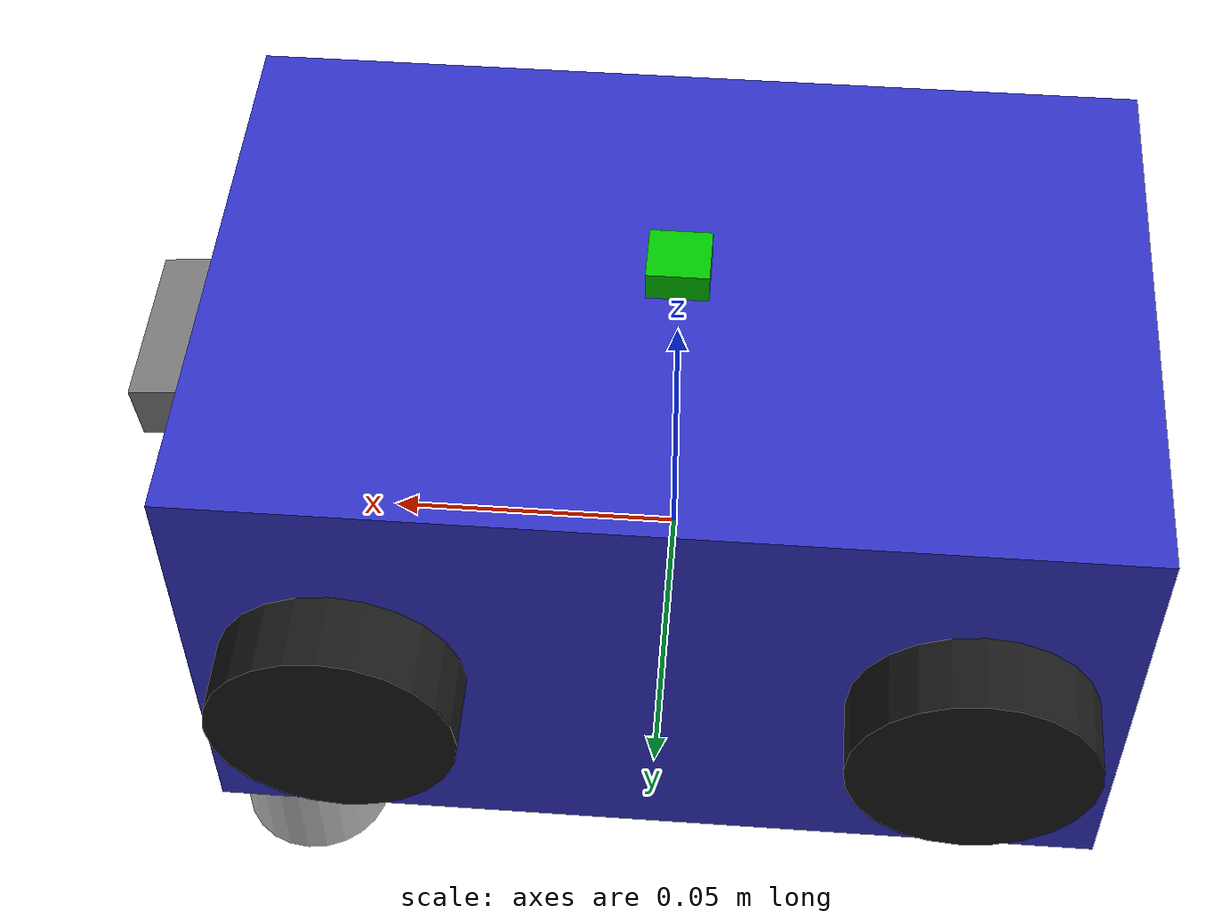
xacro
<?xml version="1.0"?>
<robot name="aspect_rover" xmlns:xacro="http://www.ros.org/wiki/xacro">

  <!-- Chassis dimensions (metres) -->
  <xacro:property name="chassis_length" value="0.15"/>
  <xacro:property name="chassis_width"  value="0.10"/>
  <xacro:property name="chassis_height" value="0.08"/>
  <xacro:property name="chassis_mass"   value="0.2"/>

  <!-- Wheel dimensions -->
  <xacro:property name="wheel_radius" value="0.02"/>
  <xacro:property name="wheel_width"  value="0.015"/>
  <xacro:property name="wheel_mass"   value="0.025"/>
  <xacro:property name="wheelbase_x"  value="0.05"/>
  <xacro:property name="wheelbase_y"  value="0.055"/>

  <!-- Auger dimensions (Phase 1 box-geometry stub) -->
  <!--   auger_radius  = drill radius (m)                               -->
  <!--   auger_length  = body/housing length (m)                        -->
  <!--   auger_feed_travel = max prismatic travel downward (m)          -->
  <!--   nominal rotation ~120 RPM = 12.57 rad/s                        -->
  <!--   nominal feed velocity 10 mm/s = 0.01 m/s                      -->
  <xacro:property name="auger_radius"      value="0.015"/>
  <xacro:property name="auger_length"      value="0.08"/>
  <xacro:property name="auger_feed_travel" value="0.05"/>
  <xacro:property name="auger_mass"        value="0.060"/>

  <!-- ======================== Base links ======================== -->

  <link name="base_footprint"/>

  <joint name="base_joint" type="fixed">
    <parent link="base_footprint"/>
    <child  link="base_link"/>
    <origin xyz="0 0 ${wheel_radius}" rpy="0 0 0"/>
  </joint>

  <link name="base_link">
    <visual>
      <geometry>
        <box size="${chassis_length} ${chassis_width} ${chassis_height}"/>
      </geometry>
      <material name="blue">
        <color rgba="0.2 0.2 0.8 1.0"/>
      </material>
    </visual>
    <collision>
      <geometry>
        <box size="${chassis_length} ${chassis_width} ${chassis_height}"/>
      </geometry>
    </collision>
    <inertial>
      <mass value="${chassis_mass}"/>
      <!-- Box inertia: ixx=m(y²+z²)/12, iyy=m(x²+z²)/12, izz=m(x²+y²)/12 -->
      <inertia ixx="0.000273" ixy="0.0" ixz="0.0"
               iyy="0.000482" iyz="0.0"
               izz="0.000542"/>
    </inertial>
  </link>

  <!-- ======================== Wheel macro ======================== -->

  <xacro:macro name="wheel" params="prefix reflect_lr reflect_fb">
    <link name="${prefix}_wheel_link">
      <visual>
        <origin xyz="0 0 0" rpy="1.5708 0 0"/>
        <geometry>
          <cylinder radius="${wheel_radius}" length="${wheel_width}"/>
        </geometry>
        <material name="black">
          <color rgba="0.1 0.1 0.1 1.0"/>
        </material>
      </visual>
      <collision>
        <origin xyz="0 0 0" rpy="1.5708 0 0"/>
        <geometry>
          <cylinder radius="${wheel_radius}" length="${wheel_width}"/>
        </geometry>
      </collision>
      <inertial>
        <mass value="${wheel_mass}"/>
        <!-- Cylinder inertia: ixx=iyy=m(3r²+h²)/12, izz=mr²/2 -->
        <inertia ixx="0.0000030" ixy="0.0" ixz="0.0"
                 iyy="0.0000030" iyz="0.0"
                 izz="0.0000050"/>
      </inertial>
    </link>

    <joint name="${prefix}_wheel_joint" type="continuous">
      <parent link="base_link"/>
      <child  link="${prefix}_wheel_link"/>
      <origin xyz="${reflect_fb * wheelbase_x} ${reflect_lr * wheelbase_y} 0"
              rpy="0 0 0"/>
      <axis xyz="0 1 0"/>
    </joint>
  </xacro:macro>

  <!-- Instantiate 4 wheels -->
  <xacro:wheel prefix="front_left"  reflect_lr=" 1" reflect_fb=" 1"/>
  <xacro:wheel prefix="front_right" reflect_lr="-1" reflect_fb=" 1"/>
  <xacro:wheel prefix="rear_left"   reflect_lr=" 1" reflect_fb="-1"/>
  <xacro:wheel prefix="rear_right"  reflect_lr="-1" reflect_fb="-1"/>

  <!-- ======================== IMU ======================== -->

  <link name="imu_link">
    <visual>
      <geometry>
        <box size="0.01 0.01 0.005"/>
      </geometry>
      <material name="green">
        <color rgba="0.0 0.8 0.0 1.0"/>
      </material>
    </visual>
    <inertial>
      <mass value="0.005"/>
      <inertia ixx="0.000001" ixy="0.0" ixz="0.0"
               iyy="0.000001" iyz="0.0"
               izz="0.000001"/>
    </inertial>
  </link>

  <joint name="imu_joint" type="fixed">
    <parent link="base_link"/>
    <child  link="imu_link"/>
    <origin xyz="0 0 ${chassis_height / 2 + 0.005}" rpy="0 0 0"/>
  </joint>

  <!-- ======================== Camera ======================== -->

  <link name="camera_link">
    <visual>
      <geometry>
        <box size="0.015 0.03 0.01"/>
      </geometry>
      <material name="grey">
        <color rgba="0.5 0.5 0.5 1.0"/>
      </material>
    </visual>
    <inertial>
      <mass value="0.010"/>
      <inertia ixx="0.000001" ixy="0.0" ixz="0.0"
               iyy="0.000001" iyz="0.0"
               izz="0.000001"/>
    </inertial>
  </link>

  <joint name="camera_joint" type="fixed">
    <parent link="base_link"/>
    <child  link="camera_link"/>
    <origin xyz="${chassis_length / 2 + 0.005} 0 0.02" rpy="0 0.1 0"/>
  </joint>

  <link name="camera_optical_link"/>

  <joint name="camera_optical_joint" type="fixed">
    <parent link="camera_link"/>
    <child  link="camera_optical_link"/>
    <origin xyz="0 0 0" rpy="-1.5708 0 -1.5708"/>
  </joint>

  <!-- ======================== Excavation Auger ======================== -->

  <!-- Mount bracket — fixed to front-bottom of chassis -->
  <link name="auger_mount_link">
    <visual>
      <geometry>
        <box size="0.01 0.01 0.005"/>
      </geometry>
      <material name="dark_grey">
        <color rgba="0.3 0.3 0.3 1.0"/>
      </material>
    </visual>
    <inertial>
      <mass value="0.005"/>
      <inertia ixx="0.000001" ixy="0.0" ixz="0.0"
               iyy="0.000001" iyz="0.0"
               izz="0.000001"/>
    </inertial>
  </link>

  <joint name="auger_mount_joint" type="fixed">
    <parent link="base_link"/>
    <child  link="auger_mount_link"/>
    <!-- Front-centre, flush with chassis bottom -->
    <origin xyz="${chassis_length / 2} 0 ${-(chassis_height / 2)}" rpy="0 0 0"/>
  </joint>

  <!-- Auger housing — translates vertically (vertical feed axis) -->
  <link name="auger_housing_link">
    <visual>
      <origin xyz="0 0 ${-(auger_length / 2)}" rpy="0 0 0"/>
      <geometry>
        <cylinder radius="${auger_radius}" length="${auger_length}"/>
      </geometry>
      <material name="silver">
        <color rgba="0.75 0.75 0.75 1.0"/>
      </material>
    </visual>
    <!-- No collision: auger spawns below ground plane (mount is flush with chassis
         bottom at -0.02m world-z); terrain contact added with real mesh in T-301. -->
    <inertial>
      <origin xyz="0 0 ${-(auger_length / 2)}" rpy="0 0 0"/>
      <mass value="${auger_mass * 0.6}"/>
      <!-- Cylinder: ixx=iyy=m(3r²+l²)/12, izz=mr²/2 -->
      <inertia ixx="0.0000212" ixy="0.0" ixz="0.0"
               iyy="0.0000212" iyz="0.0"
               izz="0.0000041"/>
    </inertial>
  </link>

  <joint name="auger_feed_joint" type="prismatic">
    <parent link="auger_mount_link"/>
    <child  link="auger_housing_link"/>
    <origin xyz="0 0 0" rpy="0 0 0"/>
    <axis xyz="0 0 -1"/>
    <limit lower="0" upper="${auger_feed_travel}"
           effort="50.0" velocity="0.01"/>
    <!-- Friction >> gravity force on housing (0.036 kg × 9.81 ≈ 0.35 N) so
         the joint stays retracted at sim start without an active controller. -->
    <dynamics damping="5.0" friction="2.0"/>
  </joint>

  <!-- Auger bit — rotates within housing -->
  <link name="auger_bit_link">
    <visual>
      <origin xyz="0 0 ${-(auger_length * 0.9 / 2)}" rpy="0 0 0"/>
      <geometry>
        <cylinder radius="${auger_radius * 0.7}" length="${auger_length * 0.9}"/>
      </geometry>
      <material name="orange">
        <color rgba="0.9 0.5 0.1 1.0"/>
      </material>
    </visual>
    <!-- No collision: see auger_housing_link note above. -->
    <inertial>
      <origin xyz="0 0 ${-(auger_length * 0.9 / 2)}" rpy="0 0 0"/>
      <mass value="${auger_mass * 0.4}"/>
      <inertia ixx="0.0000107" ixy="0.0" ixz="0.0"
               iyy="0.0000107" iyz="0.0"
               izz="0.0000013"/>
    </inertial>
  </link>

  <joint name="auger_rotation_joint" type="continuous">
    <parent link="auger_housing_link"/>
    <child  link="auger_bit_link"/>
    <origin xyz="0 0 0" rpy="0 0 0"/>
    <axis xyz="0 0 -1"/>
    <limit effort="2.0" velocity="12.57"/>
  </joint>

  <!-- ======================== Gazebo plugins ======================== -->

  <gazebo>
    <plugin filename="gz-sim-diff-drive-system"
            name="gz::sim::systems::DiffDrive">
      <left_joint>front_left_wheel_joint</left_joint>
      <left_joint>rear_left_wheel_joint</left_joint>
      <right_joint>front_right_wheel_joint</right_joint>
      <right_joint>rear_right_wheel_joint</right_joint>
      <wheel_separation>${wheelbase_y * 2}</wheel_separation>
      <wheel_radius>${wheel_radius}</wheel_radius>
      <max_linear_acceleration>1.0</max_linear_acceleration>
      <max_angular_acceleration>2.0</max_angular_acceleration>
      <!-- Gazebo topic that ros_gz_bridge will forward to /cmd_vel -->
      <topic>/model/aspect_rover/cmd_vel</topic>
      <odom_topic>/model/aspect_rover/odometry</odom_topic>
      <frame_id>odom</frame_id>
      <child_frame_id>base_footprint</child_frame_id>
      <odom_publish_frequency>50</odom_publish_frequency>
    </plugin>
  </gazebo>

  <!--
    Joint state publisher plugin — publishes wheel encoder positions so
    robot_state_publisher can compute TF for the four wheel joints.
  -->
  <gazebo>
    <plugin filename="gz-sim-joint-state-publisher-system"
            name="gz::sim::systems::JointStatePublisher">
      <topic>/model/aspect_rover/joint_states</topic>
      <joint_name>front_left_wheel_joint</joint_name>
      <joint_name>front_right_wheel_joint</joint_name>
      <joint_name>rear_left_wheel_joint</joint_name>
      <joint_name>rear_right_wheel_joint</joint_name>
      <joint_name>auger_feed_joint</joint_name>
      <joint_name>auger_rotation_joint</joint_name>
    </plugin>
  </gazebo>

  <!--
    IMU sensor plugin — publishes raw IMU data that robot_localization
    fuses with odometry via EKF.
  -->
  <gazebo reference="imu_link">
    <sensor name="imu_sensor" type="imu">
      <always_on>true</always_on>
      <update_rate>100</update_rate>
      <topic>/model/aspect_rover/imu</topic>
      <gz_frame_id>imu_link</gz_frame_id>
    </sensor>
  </gazebo>

</robot>
